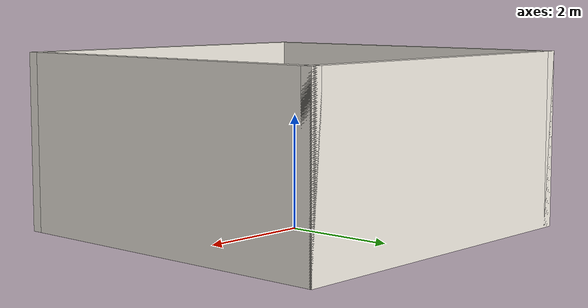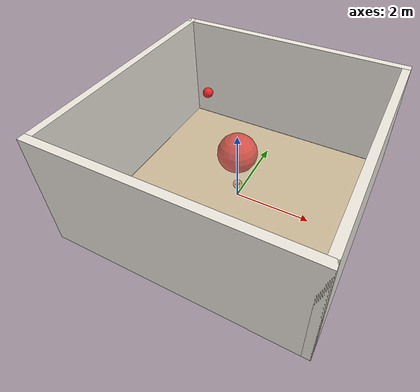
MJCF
<mujoco model="omnivla_drone_room">
  <option gravity="0 0 -9.81" integrator="RK4" density="1.225" viscosity="1.8e-5" timestep="0.002"/>

  <visual>
    <global offwidth="640" offheight="640"/>
    <quality shadowsize="2048"/>
    <headlight diffuse="0.6 0.6 0.6" ambient="0.3 0.3 0.3" specular="0 0 0"/>
  </visual>

  <asset>
    <texture name="floor_tex" type="2d" builtin="checker" width="512" height="512"
             rgb1=".85 .78 .65" rgb2=".75 .68 .55"/>
    <material name="floor_mat"  texture="floor_tex" texrepeat="6 6" reflectance="0.1"/>
    <material name="wall_mat"   rgba=".93 .91 .87 1" specular="0.1"/>
    <material name="red_mat"    rgba=".95 .15 .15 1" specular="0.5"/>
    <material name="green_mat"  rgba=".15 .80 .25 1" specular="0.5"/>
    <material name="blue_mat"   rgba=".15 .35 .95 1" specular="0.5"/>
    <material name="pillar_mat" rgba=".9 .2 .2 0.7"/>
    <material name="shelf_mat"  rgba=".75 .70 .60 1"/>

    <!-- Crazyflie primitive-geom materials -->
    <material name="cf_body"  rgba="0.10 0.10 0.10 1" specular="0.30" shininess="0.30"/>
    <material name="cf_pcb"   rgba="0.10 0.30 0.20 1" specular="0.20" shininess="0.25"/>
    <material name="cf_prop"  rgba="0.55 0.60 0.75 1" specular="0.15" shininess="0.15"/>
    <material name="cf_motor" rgba="0.85 0.85 0.85 1" specular="0.40" shininess="0.40"/>
  </asset>

  <worldbody>
    <!-- Lighting -->
    <light pos="0 0 2.8" dir="0 0 -1" diffuse=".55 .55 .52" specular=".15 .15 .15" castshadow="true"/>
    <light pos="-2 2 2.5" dir=".5 -.5 -.7" diffuse=".3 .3 .3" castshadow="false"/>
    <light pos="2 -2 2.5" dir="-.5 .5 -.7" diffuse=".3 .3 .3" castshadow="false"/>

    <!-- Floor + walls + ceiling (room is 6x6x3.1 m) -->
    <geom name="floor"   type="plane" size="3 3 .1" material="floor_mat"/>
    <geom name="wall_N"  type="box"   size="3.2 .1 1.55" pos="0  3.1 1.55" material="wall_mat"/>
    <geom name="wall_S"  type="box"   size="3.2 .1 1.55" pos="0 -3.1 1.55" material="wall_mat"/>
    <geom name="wall_E"  type="box"   size=".1 3.2 1.55" pos=" 3.1 0 1.55" material="wall_mat"/>
    <geom name="wall_W"  type="box"   size=".1 3.2 1.55" pos="-3.1 0 1.55" material="wall_mat"/>
    <geom name="ceiling" type="box"   size="3.2 3.2 .05" pos="0 0 3.05" material="wall_mat" group="3"/>

    <!-- Single translucent cylindrical obstacle, placed between start and goal at runtime. -->
    <body name="obstacle" pos="0.0 0.0 1.5">
      <geom type="sphere" size="0.5" material="pillar_mat" contype="1" conaffinity="1"/>
    </body>

    <!-- Goal markers: colored spheres at fixed heights -->
    <body name="goal_red"   pos="-2.0  2.0 1.50">
      <geom type="sphere" size=".15" material="red_mat"   contype="0" conaffinity="0"/>
    </body>
    <body name="goal_green" pos=" 2.3 -2.3 1.20">
      <geom type="sphere" size=".4" material="green_mat" contype="0" conaffinity="0"/>
    </body>
    <body name="goal_blue"  pos="-2.3 -2.3 1.80">
      <geom type="sphere" size=".15" material="blue_mat"  contype="0" conaffinity="0"/>
    </body>

    <body name="cf2" pos="0 0 0.4">
      <freejoint name="cf2_freejoint"/>
      <inertial pos="0 0 0" mass="0.027"
                diaginertia="2.3951e-5 2.3951e-5 3.2347e-5"/>

      <geom name="cf_pcb"  type="box" pos="0 0 -0.002" size="0.030 0.030 0.003" material="cf_pcb"
            contype="0" conaffinity="0"/>
      <geom name="cf_hull" type="box" pos="0 0  0.006" size="0.018 0.018 0.005" material="cf_body"
            contype="0" conaffinity="0"/>

      <geom name="cf_arm_fr" type="capsule" size="0.0025" fromto="0 0 0  0.033  0.033 0" material="cf_body" contype="0" conaffinity="0"/>
      <geom name="cf_arm_fl" type="capsule" size="0.0025" fromto="0 0 0  0.033 -0.033 0" material="cf_body" contype="0" conaffinity="0"/>
      <geom name="cf_arm_br" type="capsule" size="0.0025" fromto="0 0 0 -0.033  0.033 0" material="cf_body" contype="0" conaffinity="0"/>
      <geom name="cf_arm_bl" type="capsule" size="0.0025" fromto="0 0 0 -0.033 -0.033 0" material="cf_body" contype="0" conaffinity="0"/>

      <geom name="cf_motor_fr" type="cylinder" size="0.004 0.005" pos=" 0.033  0.033 0.004" material="cf_motor" contype="0" conaffinity="0"/>
      <geom name="cf_motor_fl" type="cylinder" size="0.004 0.005" pos=" 0.033 -0.033 0.004" material="cf_motor" contype="0" conaffinity="0"/>
      <geom name="cf_motor_br" type="cylinder" size="0.004 0.005" pos="-0.033  0.033 0.004" material="cf_motor" contype="0" conaffinity="0"/>
      <geom name="cf_motor_bl" type="cylinder" size="0.004 0.005" pos="-0.033 -0.033 0.004" material="cf_motor" contype="0" conaffinity="0"/>
      <geom name="cf_prop_fr" type="cylinder" size="0.023 0.001" pos=" 0.033  0.033 0.010" material="cf_prop" contype="0" conaffinity="0"/>
      <geom name="cf_prop_fl" type="cylinder" size="0.023 0.001" pos=" 0.033 -0.033 0.010" material="cf_prop" contype="0" conaffinity="0"/>
      <geom name="cf_prop_br" type="cylinder" size="0.023 0.001" pos="-0.033  0.033 0.010" material="cf_prop" contype="0" conaffinity="0"/>
      <geom name="cf_prop_bl" type="cylinder" size="0.023 0.001" pos="-0.033 -0.033 0.010" material="cf_prop" contype="0" conaffinity="0"/>

      <!-- Visual-only "halo" marker so the tiny Crazyflie is visible from
           the overview cameras in a 6x6 m room. Non-colliding. -->
      <geom name="cf_halo" type="sphere" size="0.12" pos="0 0 0"
            rgba="1.0 0.4 0.0 0.35" contype="0" conaffinity="0" mass="0"/>
      <geom name="cf_halo_top" type="cylinder" size="0.005 0.15" pos="0 0 0.15"
            rgba="1.0 0.4 0.0 0.9" contype="0" conaffinity="0" mass="0"/>

      <!-- Forward-facing onboard RGB. -->
      <camera name="ego_cam" pos="0.025 0 0.005" xyaxes="0 -1 0  0.10 0 0.995" fovy="70"/>

      <site name="imu"       pos="0 0 0" size="0.002"/>
      <site name="actuation" pos="0 0 0" size="0.002"/>
    </body>

    <!-- Static overview cameras (inside the room; ceiling is rendered in
         group 3, which is culled from these cameras so we can see in). -->
    <camera name="isometric" pos="3.0 -3.0 2.8" xyaxes="0.707 0.707 0 -0.5 0.5 0.707" fovy="75"/>
    <camera name="topdown"   pos="0 0 2.9"     xyaxes="1 0 0 0 1 0" fovy="90"/>
  </worldbody>

  <actuator>
    <motor name="body_thrust" site="actuation" gear="0 0 1 0 0 0"      ctrlrange="0 0.35"/>
    <motor name="x_moment"    site="actuation" gear="0 0 0 -1e-3 0 0"  ctrlrange="-1 1"/>
    <motor name="y_moment"    site="actuation" gear="0 0 0 0 -1e-3 0"  ctrlrange="-1 1"/>
    <motor name="z_moment"    site="actuation" gear="0 0 0 0 0 -1e-3"  ctrlrange="-1 1"/>
  </actuator>

  <sensor>
    <gyro          name="body_gyro"   site="imu"/>
    <accelerometer name="body_linacc" site="imu"/>
    <framequat     name="body_quat"   objtype="site" objname="imu"/>
  </sensor>
</mujoco>
